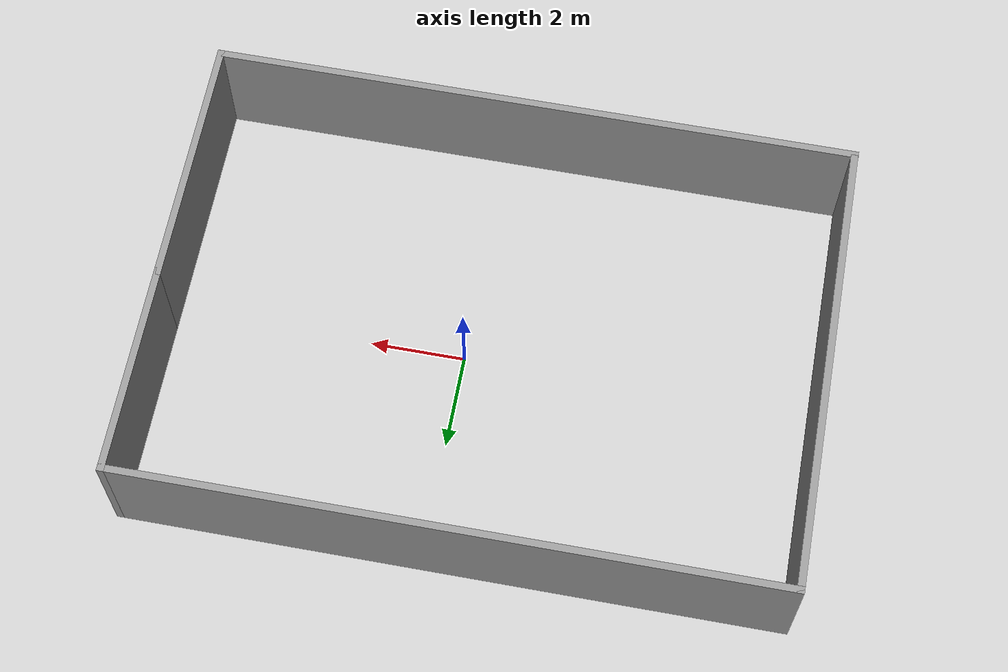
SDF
<sdf version="1.6">
 <world name="default">
  <light name="sun" type="directional">
   <pose>0 0 10 0 -0 0</pose>
   <diffuse>0.8 0.8 0.8 1</diffuse>
   <specular>0.1 0.1 0.1 1</specular>
   <attenuation>
    <range>1000</range>
    <constant>0.9</constant>
    <linear>0.01</linear>
    <quadratic>0.001</quadratic>
   </attenuation>
   <direction>-0.5 0.5 -1</direction>
  </light>
  <model name="ground_plane">
   <static>1</static>
   <link name="link">
    <collision name="collision">
     <geometry><plane><normal>0 0 1</normal><size>100 100</size></plane></geometry>
     <surface><friction><ode><mu>100</mu><mu2>50</mu2></ode></friction></surface>
    </collision>
    <visual name="visual">
     <cast_shadows>0</cast_shadows>
     <geometry><plane><normal>0 0 1</normal><size>100 100</size></plane></geometry>
     <material>
      <script><uri>file://media/materials/scripts/gazebo.material</uri><name>Gazebo/Grey</name></script>
     </material>
    </visual>
   </link>
  </model>
  <gravity>0 0 -9.8</gravity>
  <magnetic_field>6e-06 2.3e-05 -4.2e-05</magnetic_field>
  <atmosphere type="adiabatic"/>
  <physics name="default_physics" default="0" type="ode">
   <max_step_size>0.001</max_step_size>
   <real_time_factor>1</real_time_factor>
   <real_time_update_rate>1000</real_time_update_rate>
  </physics>
  <scene><ambient>0.4 0.4 0.4 1</ambient><background>0.7 0.7 0.7 1</background><shadows>1</shadows></scene>
  <spherical_coordinates>
   <surface_model>EARTH_WGS84</surface_model>
   <latitude_deg>0</latitude_deg>
   <longitude_deg>0</longitude_deg>
   <elevation>0</elevation>
   <heading_deg>0</heading_deg>
  </spherical_coordinates>
  <model name="square">
   <pose>-0.574677 -0.167743 0 0 -0 0</pose>
   <link name="Wall_10">
    <collision name="Wall_10_Collision">
     <geometry><box><size>13.75 0.15 2.5</size></box></geometry>
     <pose>0 0 1.25 0 -0 0</pose>
    </collision>
    <visual name="Wall_10_Visual">
     <pose>0 0 1.25 0 -0 0</pose>
     <geometry><box><size>13.75 0.15 2.5</size></box></geometry>
     <material>
      <script><uri>file://media/materials/scripts/gazebo.material</uri><name>Gazebo/Grey</name></script>
      <ambient>1 1 1 1</ambient>
     </material>
    </visual>
    <pose>0.003337 4.85013 0 0 -0 3.14159</pose>
   </link>
   <link name="Wall_11">
    <collision name="Wall_11_Collision">
     <geometry><box><size>9.75 0.15 2.5</size></box></geometry>
     <pose>0 0 1.25 0 -0 0</pose>
    </collision>
    <visual name="Wall_11_Visual">
     <pose>0 0 1.25 0 -0 0</pose>
     <geometry><box><size>9.75 0.15 2.5</size></box></geometry>
     <material>
      <script><uri>file://media/materials/scripts/gazebo.material</uri><name>Gazebo/Grey</name></script>
      <ambient>1 1 1 1</ambient>
     </material>
    </visual>
    <pose>-6.79666 0.050128 0 0 0 -1.5708</pose>
   </link>
   <link name="Wall_2">
    <collision name="Wall_2_Collision">
     <geometry><box><size>13.7568 0.15 2.5</size></box></geometry>
     <pose>0 0 1.25 0 -0 0</pose>
    </collision>
    <visual name="Wall_2_Visual">
     <pose>0 0 1.25 0 -0 0</pose>
     <geometry><box><size>13.7568 0.15 2.5</size></box></geometry>
     <material>
      <script><uri>file://media/materials/scripts/gazebo.material</uri><name>Gazebo/Grey</name></script>
      <ambient>1 1 1 1</ambient>
     </material>
    </visual>
    <pose>0 -4.82661 0 0 0 -0.003419</pose>
   </link>
   <link name="Wall_3">
    <collision name="Wall_3_Collision">
     <geometry><box><size>5.5 0.15 2.5</size></box></geometry>
     <pose>0 0 1.25 0 -0 0</pose>
    </collision>
    <visual name="Wall_3_Visual">
     <pose>0 0 1.25 0 -0 0</pose>
     <geometry><box><size>5.5 0.15 2.5</size></box></geometry>
     <material>
      <script><uri>file://media/materials/scripts/gazebo.material</uri><name>Gazebo/Grey</name></script>
      <ambient>1 1 1 1</ambient>
     </material>
    </visual>
    <pose>6.80334 -2.17487 0 0 -0 1.5708</pose>
   </link>
   <link name="Wall_9">
    <collision name="Wall_9_Collision">
     <geometry><box><size>4.5 0.15 2.5</size></box></geometry>
     <pose>0 0 1.25 0 -0 0</pose>
    </collision>
    <visual name="Wall_9_Visual">
     <pose>0 0 1.25 0 -0 0</pose>
     <geometry><box><size>4.5 0.15 2.5</size></box></geometry>
     <material>
      <script><uri>file://media/materials/scripts/gazebo.material</uri><name>Gazebo/Grey</name></script>
      <ambient>1 1 1 1</ambient>
     </material>
    </visual>
    <pose>6.80334 2.67513 0 0 -0 1.5708</pose>
   </link>
   <static>1</static>
  </model>
 </world>
</sdf>
